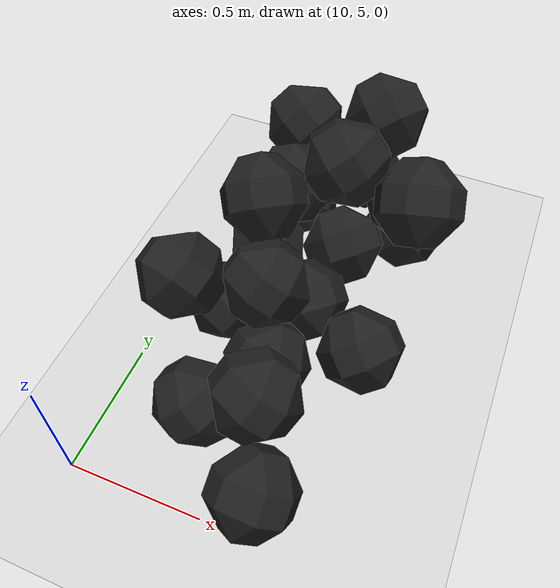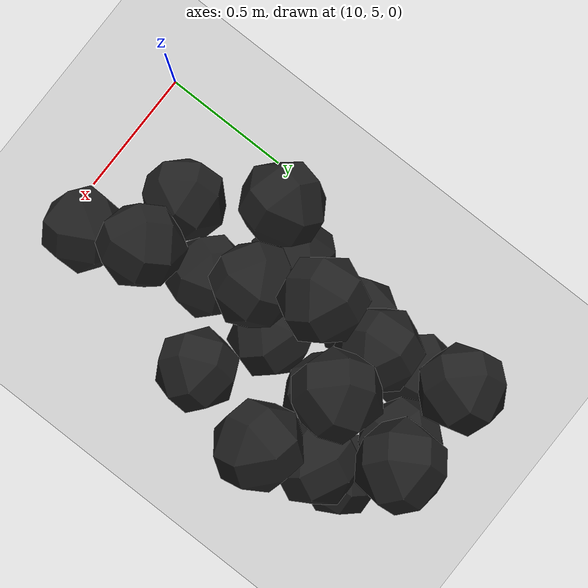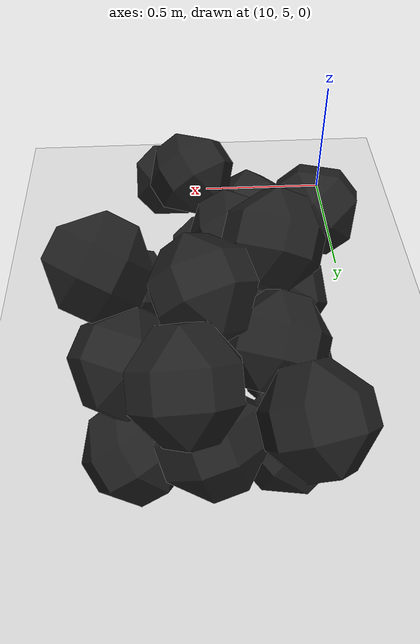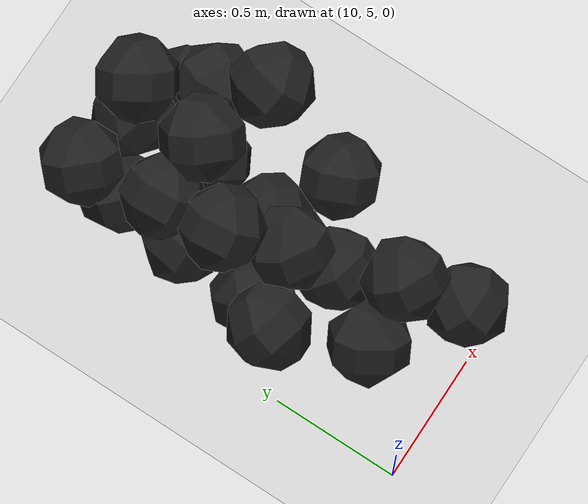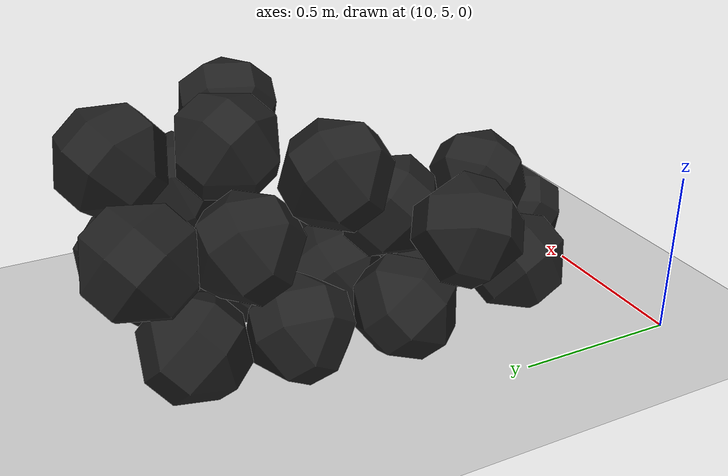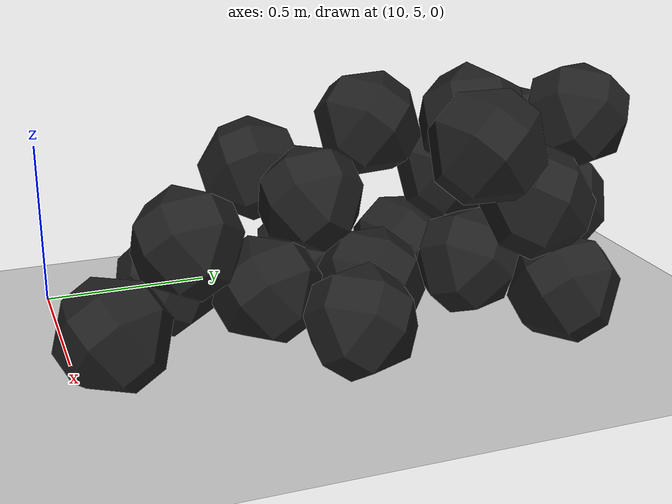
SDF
<sdf version="1.6">
 <world name="default">
  <model name="ground_plane">
   <static>1</static>
   <link name="link">
    <collision name="collision">
     <geometry><plane><normal>0 0 1</normal><size>100 100</size></plane></geometry>
     <surface><friction><ode><mu>100</mu><mu2>50</mu2></ode></friction></surface>
    </collision>
    <visual name="visual">
     <cast_shadows>0</cast_shadows>
     <geometry><plane><normal>0 0 1</normal><size>100 100</size></plane></geometry>
     <material>
      <script><uri>file://media/materials/scripts/gazebo.material</uri><name>Gazebo/Grey</name></script>
     </material>
    </visual>
   </link>
  </model>
  <model name="haoduomiantiaa_6">
   <link name="link_0">
    <inertial>
     <mass>0.2</mass>
     <inertia>
      <ixx>0.166667</ixx>
      <ixy>0</ixy>
      <ixz>0</ixz>
      <iyy>0.166667</iyy>
      <iyz>0</iyz>
      <izz>0.166667</izz>
     </inertia>
    </inertial>
    <visual name="visual">
     <geometry>
      <mesh>
       <uri>/home/oliver/catkin_ws/src/pudong_gazebo/world/stl/haoduomianti.stl</uri>
       <scale>1 1 1</scale>
      </mesh>
     </geometry>
     <material>
      <lighting>1</lighting>
      <script><uri>file://media/materials/scripts/gazebo.material</uri><name>Gazebo/Black</name></script>
      <shader type="pixel"><normal_map>__default__</normal_map></shader>
      <ambient>0.3 0.3 0.3 1</ambient>
      <diffuse>0.7 0.7 0.7 1</diffuse>
      <specular>0.01 0.01 0.01 1</specular>
      <emissive>0 0 0 1</emissive>
     </material>
    </visual>
    <collision name="collision">
     <geometry>
      <mesh>
       <uri>/home/oliver/catkin_ws/src/pudong_gazebo/world/stl/haoduomianti.stl</uri>
       <scale>1 1 1</scale>
      </mesh>
     </geometry>
     <surface>
      <friction>
       <ode><mu>1</mu><mu2>1</mu2><fdir1>0 0 0</fdir1><slip1>0</slip1><slip2>0</slip2></ode>
       <torsional>
        <coefficient>1</coefficient>
        <patch_radius>0</patch_radius>
        <surface_radius>0</surface_radius>
        <use_patch_radius>1</use_patch_radius>
        <ode><slip>0</slip></ode>
       </torsional>
      </friction>
      <bounce><restitution_coefficient>0</restitution_coefficient><threshold>1e+06</threshold></bounce>
      <contact>
       <collide_without_contact>0</collide_without_contact>
       <collide_without_contact_bitmask>1</collide_without_contact_bitmask>
       <collide_bitmask>1</collide_bitmask>
       <ode>
        <soft_cfm>0</soft_cfm>
        <soft_erp>0.2</soft_erp>
        <kp>1e+13</kp>
        <kd>1</kd>
        <max_vel>0.01</max_vel>
        <min_depth>0</min_depth>
       </ode>
       <bullet>
        <split_impulse>1</split_impulse>
        <split_impulse_penetration_threshold>-0.01</split_impulse_penetration_threshold>
        <soft_cfm>0</soft_cfm>
        <soft_erp>0.2</soft_erp>
        <kp>1e+13</kp>
        <kd>1</kd>
       </bullet>
      </contact>
     </surface>
    </collision>
   </link>
   <static>0</static>
   <pose>10.7777 6.39344 -0.11622 0.785471 -0.615068 -0.918398</pose>
  </model>
  <model name="haoduomiantiaa_34">
   <link name="link_0">
    <inertial>
     <mass>0.2</mass>
     <inertia>
      <ixx>0.166667</ixx>
      <ixy>0</ixy>
      <ixz>0</ixz>
      <iyy>0.166667</iyy>
      <iyz>0</iyz>
      <izz>0.166667</izz>
     </inertia>
    </inertial>
    <visual name="visual">
     <geometry>
      <mesh>
       <uri>/home/oliver/catkin_ws/src/pudong_gazebo/world/stl/haoduomianti.stl</uri>
       <scale>1 1 1</scale>
      </mesh>
     </geometry>
     <material>
      <lighting>1</lighting>
      <script><uri>file://media/materials/scripts/gazebo.material</uri><name>Gazebo/Black</name></script>
      <shader type="pixel"><normal_map>__default__</normal_map></shader>
      <ambient>0.3 0.3 0.3 1</ambient>
      <diffuse>0.7 0.7 0.7 1</diffuse>
      <specular>0.01 0.01 0.01 1</specular>
      <emissive>0 0 0 1</emissive>
     </material>
    </visual>
    <collision name="collision">
     <geometry>
      <mesh>
       <uri>/home/oliver/catkin_ws/src/pudong_gazebo/world/stl/haoduomianti.stl</uri>
       <scale>1 1 1</scale>
      </mesh>
     </geometry>
     <surface>
      <friction>
       <ode><mu>1</mu><mu2>1</mu2><fdir1>0 0 0</fdir1><slip1>0</slip1><slip2>0</slip2></ode>
       <torsional>
        <coefficient>1</coefficient>
        <patch_radius>0</patch_radius>
        <surface_radius>0</surface_radius>
        <use_patch_radius>1</use_patch_radius>
        <ode><slip>0</slip></ode>
       </torsional>
      </friction>
      <bounce><restitution_coefficient>0</restitution_coefficient><threshold>1e+06</threshold></bounce>
      <contact>
       <collide_without_contact>0</collide_without_contact>
       <collide_without_contact_bitmask>1</collide_without_contact_bitmask>
       <collide_bitmask>1</collide_bitmask>
       <ode>
        <soft_cfm>0</soft_cfm>
        <soft_erp>0.2</soft_erp>
        <kp>1e+13</kp>
        <kd>1</kd>
        <max_vel>0.01</max_vel>
        <min_depth>0</min_depth>
       </ode>
       <bullet>
        <split_impulse>1</split_impulse>
        <split_impulse_penetration_threshold>-0.01</split_impulse_penetration_threshold>
        <soft_cfm>0</soft_cfm>
        <soft_erp>0.2</soft_erp>
        <kp>1e+13</kp>
        <kd>1</kd>
       </bullet>
      </contact>
     </surface>
    </collision>
   </link>
   <static>0</static>
   <pose>10.2586 6.45566 -0.094433 0.784668 -0.277597 -0.855444</pose>
  </model>
  <model name="haoduomiantiaa_37">
   <link name="link_0">
    <inertial>
     <mass>0.2</mass>
     <inertia>
      <ixx>0.166667</ixx>
      <ixy>0</ixy>
      <ixz>0</ixz>
      <iyy>0.166667</iyy>
      <iyz>0</iyz>
      <izz>0.166667</izz>
     </inertia>
    </inertial>
    <visual name="visual">
     <geometry>
      <mesh>
       <uri>/home/oliver/catkin_ws/src/pudong_gazebo/world/stl/haoduomianti.stl</uri>
       <scale>1 1 1</scale>
      </mesh>
     </geometry>
     <material>
      <lighting>1</lighting>
      <script><uri>file://media/materials/scripts/gazebo.material</uri><name>Gazebo/Black</name></script>
      <shader type="pixel"><normal_map>__default__</normal_map></shader>
      <ambient>0.3 0.3 0.3 1</ambient>
      <diffuse>0.7 0.7 0.7 1</diffuse>
      <specular>0.01 0.01 0.01 1</specular>
      <emissive>0 0 0 1</emissive>
     </material>
    </visual>
    <collision name="collision">
     <geometry>
      <mesh>
       <uri>/home/oliver/catkin_ws/src/pudong_gazebo/world/stl/haoduomianti.stl</uri>
       <scale>1 1 1</scale>
      </mesh>
     </geometry>
     <surface>
      <friction>
       <ode><mu>1</mu><mu2>1</mu2><fdir1>0 0 0</fdir1><slip1>0</slip1><slip2>0</slip2></ode>
       <torsional>
        <coefficient>1</coefficient>
        <patch_radius>0</patch_radius>
        <surface_radius>0</surface_radius>
        <use_patch_radius>1</use_patch_radius>
        <ode><slip>0</slip></ode>
       </torsional>
      </friction>
      <bounce><restitution_coefficient>0</restitution_coefficient><threshold>1e+06</threshold></bounce>
      <contact>
       <collide_without_contact>0</collide_without_contact>
       <collide_without_contact_bitmask>1</collide_without_contact_bitmask>
       <collide_bitmask>1</collide_bitmask>
       <ode>
        <soft_cfm>0</soft_cfm>
        <soft_erp>0.2</soft_erp>
        <kp>1e+13</kp>
        <kd>1</kd>
        <max_vel>0.01</max_vel>
        <min_depth>0</min_depth>
       </ode>
       <bullet>
        <split_impulse>1</split_impulse>
        <split_impulse_penetration_threshold>-0.01</split_impulse_penetration_threshold>
        <soft_cfm>0</soft_cfm>
        <soft_erp>0.2</soft_erp>
        <kp>1e+13</kp>
        <kd>1</kd>
       </bullet>
      </contact>
     </surface>
    </collision>
   </link>
   <static>0</static>
   <pose>10.4399 6.28602 0.224619 -2.3656 -0.652986 -2.24259</pose>
  </model>
  <model name="haoduomiantiaa_63">
   <link name="link_0">
    <inertial>
     <mass>0.2</mass>
     <inertia>
      <ixx>0.166667</ixx>
      <ixy>0</ixy>
      <ixz>0</ixz>
      <iyy>0.166667</iyy>
      <iyz>0</iyz>
      <izz>0.166667</izz>
     </inertia>
    </inertial>
    <visual name="visual">
     <geometry>
      <mesh>
       <uri>/home/oliver/catkin_ws/src/pudong_gazebo/world/stl/haoduomianti.stl</uri>
       <scale>1 1 1</scale>
      </mesh>
     </geometry>
     <material>
      <lighting>1</lighting>
      <script><uri>file://media/materials/scripts/gazebo.material</uri><name>Gazebo/Black</name></script>
      <shader type="pixel"><normal_map>__default__</normal_map></shader>
      <ambient>0.3 0.3 0.3 1</ambient>
      <diffuse>0.7 0.7 0.7 1</diffuse>
      <specular>0.01 0.01 0.01 1</specular>
      <emissive>0 0 0 1</emissive>
     </material>
    </visual>
    <collision name="collision">
     <geometry>
      <mesh>
       <uri>/home/oliver/catkin_ws/src/pudong_gazebo/world/stl/haoduomianti.stl</uri>
       <scale>1 1 1</scale>
      </mesh>
     </geometry>
     <surface>
      <friction>
       <ode><mu>1</mu><mu2>1</mu2><fdir1>0 0 0</fdir1><slip1>0</slip1><slip2>0</slip2></ode>
       <torsional>
        <coefficient>1</coefficient>
        <patch_radius>0</patch_radius>
        <surface_radius>0</surface_radius>
        <use_patch_radius>1</use_patch_radius>
        <ode><slip>0</slip></ode>
       </torsional>
      </friction>
      <bounce><restitution_coefficient>0</restitution_coefficient><threshold>1e+06</threshold></bounce>
      <contact>
       <collide_without_contact>0</collide_without_contact>
       <collide_without_contact_bitmask>1</collide_without_contact_bitmask>
       <collide_bitmask>1</collide_bitmask>
       <ode>
        <soft_cfm>0</soft_cfm>
        <soft_erp>0.2</soft_erp>
        <kp>1e+13</kp>
        <kd>1</kd>
        <max_vel>0.01</max_vel>
        <min_depth>0</min_depth>
       </ode>
       <bullet>
        <split_impulse>1</split_impulse>
        <split_impulse_penetration_threshold>-0.01</split_impulse_penetration_threshold>
        <soft_cfm>0</soft_cfm>
        <soft_erp>0.2</soft_erp>
        <kp>1e+13</kp>
        <kd>1</kd>
       </bullet>
      </contact>
     </surface>
    </collision>
   </link>
   <static>0</static>
   <pose>10.2996 6.23098 0.147769 0.92545 -0.753438 2.07668</pose>
  </model>
  <model name="haoduomiantiaa_64">
   <link name="link_0">
    <inertial>
     <mass>0.2</mass>
     <inertia>
      <ixx>0.166667</ixx>
      <ixy>0</ixy>
      <ixz>0</ixz>
      <iyy>0.166667</iyy>
      <iyz>0</iyz>
      <izz>0.166667</izz>
     </inertia>
    </inertial>
    <visual name="visual">
     <geometry>
      <mesh>
       <uri>/home/oliver/catkin_ws/src/pudong_gazebo/world/stl/haoduomianti.stl</uri>
       <scale>1 1 1</scale>
      </mesh>
     </geometry>
     <material>
      <lighting>1</lighting>
      <script><uri>file://media/materials/scripts/gazebo.material</uri><name>Gazebo/Black</name></script>
      <shader type="pixel"><normal_map>__default__</normal_map></shader>
      <ambient>0.3 0.3 0.3 1</ambient>
      <diffuse>0.7 0.7 0.7 1</diffuse>
      <specular>0.01 0.01 0.01 1</specular>
      <emissive>0 0 0 1</emissive>
     </material>
    </visual>
    <collision name="collision">
     <geometry>
      <mesh>
       <uri>/home/oliver/catkin_ws/src/pudong_gazebo/world/stl/haoduomianti.stl</uri>
       <scale>1 1 1</scale>
      </mesh>
     </geometry>
     <surface>
      <friction>
       <ode><mu>1</mu><mu2>1</mu2><fdir1>0 0 0</fdir1><slip1>0</slip1><slip2>0</slip2></ode>
       <torsional>
        <coefficient>1</coefficient>
        <patch_radius>0</patch_radius>
        <surface_radius>0</surface_radius>
        <use_patch_radius>1</use_patch_radius>
        <ode><slip>0</slip></ode>
       </torsional>
      </friction>
      <bounce><restitution_coefficient>0</restitution_coefficient><threshold>1e+06</threshold></bounce>
      <contact>
       <collide_without_contact>0</collide_without_contact>
       <collide_without_contact_bitmask>1</collide_without_contact_bitmask>
       <collide_bitmask>1</collide_bitmask>
       <ode>
        <soft_cfm>0</soft_cfm>
        <soft_erp>0.2</soft_erp>
        <kp>1e+13</kp>
        <kd>1</kd>
        <max_vel>0.01</max_vel>
        <min_depth>0</min_depth>
       </ode>
       <bullet>
        <split_impulse>1</split_impulse>
        <split_impulse_penetration_threshold>-0.01</split_impulse_penetration_threshold>
        <soft_cfm>0</soft_cfm>
        <soft_erp>0.2</soft_erp>
        <kp>1e+13</kp>
        <kd>1</kd>
       </bullet>
      </contact>
     </surface>
    </collision>
   </link>
   <static>0</static>
   <pose>10.6053 6.12365 0.224257 -2.30398 -0.653258 -1.89944</pose>
  </model>
  <model name="haoduomiantiaa_67">
   <link name="link_0">
    <inertial>
     <mass>0.2</mass>
     <inertia>
      <ixx>0.166667</ixx>
      <ixy>0</ixy>
      <ixz>0</ixz>
      <iyy>0.166667</iyy>
      <iyz>0</iyz>
      <izz>0.166667</izz>
     </inertia>
    </inertial>
    <visual name="visual">
     <geometry>
      <mesh>
       <uri>/home/oliver/catkin_ws/src/pudong_gazebo/world/stl/haoduomianti.stl</uri>
       <scale>1 1 1</scale>
      </mesh>
     </geometry>
     <material>
      <lighting>1</lighting>
      <script><uri>file://media/materials/scripts/gazebo.material</uri><name>Gazebo/Black</name></script>
      <shader type="pixel"><normal_map>__default__</normal_map></shader>
      <ambient>0.3 0.3 0.3 1</ambient>
      <diffuse>0.7 0.7 0.7 1</diffuse>
      <specular>0.01 0.01 0.01 1</specular>
      <emissive>0 0 0 1</emissive>
     </material>
    </visual>
    <collision name="collision">
     <geometry>
      <mesh>
       <uri>/home/oliver/catkin_ws/src/pudong_gazebo/world/stl/haoduomianti.stl</uri>
       <scale>1 1 1</scale>
      </mesh>
     </geometry>
     <surface>
      <friction>
       <ode><mu>1</mu><mu2>1</mu2><fdir1>0 0 0</fdir1><slip1>0</slip1><slip2>0</slip2></ode>
       <torsional>
        <coefficient>1</coefficient>
        <patch_radius>0</patch_radius>
        <surface_radius>0</surface_radius>
        <use_patch_radius>1</use_patch_radius>
        <ode><slip>0</slip></ode>
       </torsional>
      </friction>
      <bounce><restitution_coefficient>0</restitution_coefficient><threshold>1e+06</threshold></bounce>
      <contact>
       <collide_without_contact>0</collide_without_contact>
       <collide_without_contact_bitmask>1</collide_without_contact_bitmask>
       <collide_bitmask>1</collide_bitmask>
       <ode>
        <soft_cfm>0</soft_cfm>
        <soft_erp>0.2</soft_erp>
        <kp>1e+13</kp>
        <kd>1</kd>
        <max_vel>0.01</max_vel>
        <min_depth>0</min_depth>
       </ode>
       <bullet>
        <split_impulse>1</split_impulse>
        <split_impulse_penetration_threshold>-0.01</split_impulse_penetration_threshold>
        <soft_cfm>0</soft_cfm>
        <soft_erp>0.2</soft_erp>
        <kp>1e+13</kp>
        <kd>1</kd>
       </bullet>
      </contact>
     </surface>
    </collision>
   </link>
   <static>0</static>
   <pose>10.1621 5.87307 -0.078001 0.785408 -0.056548 -0.82679</pose>
  </model>
  <model name="haoduomiantiaa_71">
   <link name="link_0">
    <inertial>
     <mass>0.2</mass>
     <inertia>
      <ixx>0.166667</ixx>
      <ixy>0</ixy>
      <ixz>0</ixz>
      <iyy>0.166667</iyy>
      <iyz>0</iyz>
      <izz>0.166667</izz>
     </inertia>
    </inertial>
    <visual name="visual">
     <geometry>
      <mesh>
       <uri>/home/oliver/catkin_ws/src/pudong_gazebo/world/stl/haoduomianti.stl</uri>
       <scale>1 1 1</scale>
      </mesh>
     </geometry>
     <material>
      <lighting>1</lighting>
      <script><uri>file://media/materials/scripts/gazebo.material</uri><name>Gazebo/Black</name></script>
      <shader type="pixel"><normal_map>__default__</normal_map></shader>
      <ambient>0.3 0.3 0.3 1</ambient>
      <diffuse>0.7 0.7 0.7 1</diffuse>
      <specular>0.01 0.01 0.01 1</specular>
      <emissive>0 0 0 1</emissive>
     </material>
    </visual>
    <collision name="collision">
     <geometry>
      <mesh>
       <uri>/home/oliver/catkin_ws/src/pudong_gazebo/world/stl/haoduomianti.stl</uri>
       <scale>1 1 1</scale>
      </mesh>
     </geometry>
     <surface>
      <friction>
       <ode><mu>1</mu><mu2>1</mu2><fdir1>0 0 0</fdir1><slip1>0</slip1><slip2>0</slip2></ode>
       <torsional>
        <coefficient>1</coefficient>
        <patch_radius>0</patch_radius>
        <surface_radius>0</surface_radius>
        <use_patch_radius>1</use_patch_radius>
        <ode><slip>0</slip></ode>
       </torsional>
      </friction>
      <bounce><restitution_coefficient>0</restitution_coefficient><threshold>1e+06</threshold></bounce>
      <contact>
       <collide_without_contact>0</collide_without_contact>
       <collide_without_contact_bitmask>1</collide_without_contact_bitmask>
       <collide_bitmask>1</collide_bitmask>
       <ode>
        <soft_cfm>0</soft_cfm>
        <soft_erp>0.2</soft_erp>
        <kp>1e+13</kp>
        <kd>1</kd>
        <max_vel>0.01</max_vel>
        <min_depth>0</min_depth>
       </ode>
       <bullet>
        <split_impulse>1</split_impulse>
        <split_impulse_penetration_threshold>-0.01</split_impulse_penetration_threshold>
        <soft_cfm>0</soft_cfm>
        <soft_erp>0.2</soft_erp>
        <kp>1e+13</kp>
        <kd>1</kd>
       </bullet>
      </contact>
     </surface>
    </collision>
   </link>
   <static>0</static>
   <pose>10.4831 5.59359 -0.110273 0.908385 -0.667689 1.27099</pose>
  </model>
  <model name="haoduomiantiaa_75">
   <link name="link_0">
    <inertial>
     <mass>0.2</mass>
     <inertia>
      <ixx>0.166667</ixx>
      <ixy>0</ixy>
      <ixz>0</ixz>
      <iyy>0.166667</iyy>
      <iyz>0</iyz>
      <izz>0.166667</izz>
     </inertia>
    </inertial>
    <visual name="visual">
     <geometry>
      <mesh>
       <uri>/home/oliver/catkin_ws/src/pudong_gazebo/world/stl/haoduomianti.stl</uri>
       <scale>1 1 1</scale>
      </mesh>
     </geometry>
     <material>
      <lighting>1</lighting>
      <script><uri>file://media/materials/scripts/gazebo.material</uri><name>Gazebo/Black</name></script>
      <shader type="pixel"><normal_map>__default__</normal_map></shader>
      <ambient>0.3 0.3 0.3 1</ambient>
      <diffuse>0.7 0.7 0.7 1</diffuse>
      <specular>0.01 0.01 0.01 1</specular>
      <emissive>0 0 0 1</emissive>
     </material>
    </visual>
    <collision name="collision">
     <geometry>
      <mesh>
       <uri>/home/oliver/catkin_ws/src/pudong_gazebo/world/stl/haoduomianti.stl</uri>
       <scale>1 1 1</scale>
      </mesh>
     </geometry>
     <surface>
      <friction>
       <ode><mu>1</mu><mu2>1</mu2><fdir1>0 0 0</fdir1><slip1>0</slip1><slip2>0</slip2></ode>
       <torsional>
        <coefficient>1</coefficient>
        <patch_radius>0</patch_radius>
        <surface_radius>0</surface_radius>
        <use_patch_radius>1</use_patch_radius>
        <ode><slip>0</slip></ode>
       </torsional>
      </friction>
      <bounce><restitution_coefficient>0</restitution_coefficient><threshold>1e+06</threshold></bounce>
      <contact>
       <collide_without_contact>0</collide_without_contact>
       <collide_without_contact_bitmask>1</collide_without_contact_bitmask>
       <collide_bitmask>1</collide_bitmask>
       <ode>
        <soft_cfm>0</soft_cfm>
        <soft_erp>0.2</soft_erp>
        <kp>1e+13</kp>
        <kd>1</kd>
        <max_vel>0.01</max_vel>
        <min_depth>0</min_depth>
       </ode>
       <bullet>
        <split_impulse>1</split_impulse>
        <split_impulse_penetration_threshold>-0.01</split_impulse_penetration_threshold>
        <soft_cfm>0</soft_cfm>
        <soft_erp>0.2</soft_erp>
        <kp>1e+13</kp>
        <kd>1</kd>
       </bullet>
      </contact>
     </surface>
    </collision>
   </link>
   <static>0</static>
   <pose>10.7908 5.74537 -0.114168 0.739771 -0.636054 -1.65928</pose>
  </model>
  <model name="haoduomiantiaa_77">
   <link name="link_0">
    <inertial>
     <mass>0.2</mass>
     <inertia>
      <ixx>0.166667</ixx>
      <ixy>0</ixy>
      <ixz>0</ixz>
      <iyy>0.166667</iyy>
      <iyz>0</iyz>
      <izz>0.166667</izz>
     </inertia>
    </inertial>
    <visual name="visual">
     <geometry>
      <mesh>
       <uri>/home/oliver/catkin_ws/src/pudong_gazebo/world/stl/haoduomianti.stl</uri>
       <scale>1 1 1</scale>
      </mesh>
     </geometry>
     <material>
      <lighting>1</lighting>
      <script><uri>file://media/materials/scripts/gazebo.material</uri><name>Gazebo/Black</name></script>
      <shader type="pixel"><normal_map>__default__</normal_map></shader>
      <ambient>0.3 0.3 0.3 1</ambient>
      <diffuse>0.7 0.7 0.7 1</diffuse>
      <specular>0.01 0.01 0.01 1</specular>
      <emissive>0 0 0 1</emissive>
     </material>
    </visual>
    <collision name="collision">
     <geometry>
      <mesh>
       <uri>/home/oliver/catkin_ws/src/pudong_gazebo/world/stl/haoduomianti.stl</uri>
       <scale>1 1 1</scale>
      </mesh>
     </geometry>
     <surface>
      <friction>
       <ode><mu>1</mu><mu2>1</mu2><fdir1>0 0 0</fdir1><slip1>0</slip1><slip2>0</slip2></ode>
       <torsional>
        <coefficient>1</coefficient>
        <patch_radius>0</patch_radius>
        <surface_radius>0</surface_radius>
        <use_patch_radius>1</use_patch_radius>
        <ode><slip>0</slip></ode>
       </torsional>
      </friction>
      <bounce><restitution_coefficient>0</restitution_coefficient><threshold>1e+06</threshold></bounce>
      <contact>
       <collide_without_contact>0</collide_without_contact>
       <collide_without_contact_bitmask>1</collide_without_contact_bitmask>
       <collide_bitmask>1</collide_bitmask>
       <ode>
        <soft_cfm>0</soft_cfm>
        <soft_erp>0.2</soft_erp>
        <kp>1e+13</kp>
        <kd>1</kd>
        <max_vel>0.01</max_vel>
        <min_depth>0</min_depth>
       </ode>
       <bullet>
        <split_impulse>1</split_impulse>
        <split_impulse_penetration_threshold>-0.01</split_impulse_penetration_threshold>
        <soft_cfm>0</soft_cfm>
        <soft_erp>0.2</soft_erp>
        <kp>1e+13</kp>
        <kd>1</kd>
       </bullet>
      </contact>
     </surface>
    </collision>
   </link>
   <static>0</static>
   <pose>10.5324 6.1323 -0.063365 1.09684 -0.667922 2.38381</pose>
  </model>
  <model name="haoduomiantiaa_82">
   <link name="link_0">
    <inertial>
     <mass>0.2</mass>
     <inertia>
      <ixx>0.166667</ixx>
      <ixy>0</ixy>
      <ixz>0</ixz>
      <iyy>0.166667</iyy>
      <iyz>0</iyz>
      <izz>0.166667</izz>
     </inertia>
    </inertial>
    <visual name="visual">
     <geometry>
      <mesh>
       <uri>/home/oliver/catkin_ws/src/pudong_gazebo/world/stl/haoduomianti.stl</uri>
       <scale>1 1 1</scale>
      </mesh>
     </geometry>
     <material>
      <lighting>1</lighting>
      <script><uri>file://media/materials/scripts/gazebo.material</uri><name>Gazebo/Black</name></script>
      <shader type="pixel"><normal_map>__default__</normal_map></shader>
      <ambient>0.3 0.3 0.3 1</ambient>
      <diffuse>0.7 0.7 0.7 1</diffuse>
      <specular>0.01 0.01 0.01 1</specular>
      <emissive>0 0 0 1</emissive>
     </material>
    </visual>
    <collision name="collision">
     <geometry>
      <mesh>
       <uri>/home/oliver/catkin_ws/src/pudong_gazebo/world/stl/haoduomianti.stl</uri>
       <scale>1 1 1</scale>
      </mesh>
     </geometry>
     <surface>
      <friction>
       <ode><mu>1</mu><mu2>1</mu2><fdir1>0 0 0</fdir1><slip1>0</slip1><slip2>0</slip2></ode>
       <torsional>
        <coefficient>1</coefficient>
        <patch_radius>0</patch_radius>
        <surface_radius>0</surface_radius>
        <use_patch_radius>1</use_patch_radius>
        <ode><slip>0</slip></ode>
       </torsional>
      </friction>
      <bounce><restitution_coefficient>0</restitution_coefficient><threshold>1e+06</threshold></bounce>
      <contact>
       <collide_without_contact>0</collide_without_contact>
       <collide_without_contact_bitmask>1</collide_without_contact_bitmask>
       <collide_bitmask>1</collide_bitmask>
       <ode>
        <soft_cfm>0</soft_cfm>
        <soft_erp>0.2</soft_erp>
        <kp>1e+13</kp>
        <kd>1</kd>
        <max_vel>0.01</max_vel>
        <min_depth>0</min_depth>
       </ode>
       <bullet>
        <split_impulse>1</split_impulse>
        <split_impulse_penetration_threshold>-0.01</split_impulse_penetration_threshold>
        <soft_cfm>0</soft_cfm>
        <soft_erp>0.2</soft_erp>
        <kp>1e+13</kp>
        <kd>1</kd>
       </bullet>
      </contact>
     </surface>
    </collision>
   </link>
   <static>0</static>
   <pose>10.4498 5.76093 0.128531 0.798301 -0.744609 1.02449</pose>
  </model>
  <model name="haoduomiantiaa_87">
   <link name="link_0">
    <inertial>
     <mass>0.2</mass>
     <inertia>
      <ixx>0.166667</ixx>
      <ixy>0</ixy>
      <ixz>0</ixz>
      <iyy>0.166667</iyy>
      <iyz>0</iyz>
      <izz>0.166667</izz>
     </inertia>
    </inertial>
    <visual name="visual">
     <geometry>
      <mesh>
       <uri>/home/oliver/catkin_ws/src/pudong_gazebo/world/stl/haoduomianti.stl</uri>
       <scale>1 1 1</scale>
      </mesh>
     </geometry>
     <material>
      <lighting>1</lighting>
      <script><uri>file://media/materials/scripts/gazebo.material</uri><name>Gazebo/Black</name></script>
      <shader type="pixel"><normal_map>__default__</normal_map></shader>
      <ambient>0.3 0.3 0.3 1</ambient>
      <diffuse>0.7 0.7 0.7 1</diffuse>
      <specular>0.01 0.01 0.01 1</specular>
      <emissive>0 0 0 1</emissive>
     </material>
    </visual>
    <collision name="collision">
     <geometry>
      <mesh>
       <uri>/home/oliver/catkin_ws/src/pudong_gazebo/world/stl/haoduomianti.stl</uri>
       <scale>1 1 1</scale>
      </mesh>
     </geometry>
     <surface>
      <friction>
       <ode><mu>1</mu><mu2>1</mu2><fdir1>0 0 0</fdir1><slip1>0</slip1><slip2>0</slip2></ode>
       <torsional>
        <coefficient>1</coefficient>
        <patch_radius>0</patch_radius>
        <surface_radius>0</surface_radius>
        <use_patch_radius>1</use_patch_radius>
        <ode><slip>0</slip></ode>
       </torsional>
      </friction>
      <bounce><restitution_coefficient>0</restitution_coefficient><threshold>1e+06</threshold></bounce>
      <contact>
       <collide_without_contact>0</collide_without_contact>
       <collide_without_contact_bitmask>1</collide_without_contact_bitmask>
       <collide_bitmask>1</collide_bitmask>
       <ode>
        <soft_cfm>0</soft_cfm>
        <soft_erp>0.2</soft_erp>
        <kp>1e+13</kp>
        <kd>1</kd>
        <max_vel>0.01</max_vel>
        <min_depth>0</min_depth>
       </ode>
       <bullet>
        <split_impulse>1</split_impulse>
        <split_impulse_penetration_threshold>-0.01</split_impulse_penetration_threshold>
        <soft_cfm>0</soft_cfm>
        <soft_erp>0.2</soft_erp>
        <kp>1e+13</kp>
        <kd>1</kd>
       </bullet>
      </contact>
     </surface>
    </collision>
   </link>
   <static>0</static>
   <pose>10.6458 6.50741 0.085409 0.769814 -0.223904 -2.92092</pose>
  </model>
  <model name="haoduomiantiaa_106">
   <link name="link_0">
    <inertial>
     <mass>0.2</mass>
     <inertia>
      <ixx>0.166667</ixx>
      <ixy>0</ixy>
      <ixz>0</ixz>
      <iyy>0.166667</iyy>
      <iyz>0</iyz>
      <izz>0.166667</izz>
     </inertia>
    </inertial>
    <visual name="visual">
     <geometry>
      <mesh>
       <uri>/home/oliver/catkin_ws/src/pudong_gazebo/world/stl/haoduomianti.stl</uri>
       <scale>1 1 1</scale>
      </mesh>
     </geometry>
     <material>
      <lighting>1</lighting>
      <script><uri>file://media/materials/scripts/gazebo.material</uri><name>Gazebo/Black</name></script>
      <shader type="pixel"><normal_map>__default__</normal_map></shader>
      <ambient>0.3 0.3 0.3 1</ambient>
      <diffuse>0.7 0.7 0.7 1</diffuse>
      <specular>0.01 0.01 0.01 1</specular>
      <emissive>0 0 0 1</emissive>
     </material>
    </visual>
    <collision name="collision">
     <geometry>
      <mesh>
       <uri>/home/oliver/catkin_ws/src/pudong_gazebo/world/stl/haoduomianti.stl</uri>
       <scale>1 1 1</scale>
      </mesh>
     </geometry>
     <surface>
      <friction>
       <ode><mu>1</mu><mu2>1</mu2><fdir1>0 0 0</fdir1><slip1>0</slip1><slip2>0</slip2></ode>
       <torsional>
        <coefficient>1</coefficient>
        <patch_radius>0</patch_radius>
        <surface_radius>0</surface_radius>
        <use_patch_radius>1</use_patch_radius>
        <ode><slip>0</slip></ode>
       </torsional>
      </friction>
      <bounce><restitution_coefficient>0</restitution_coefficient><threshold>1e+06</threshold></bounce>
      <contact>
       <collide_without_contact>0</collide_without_contact>
       <collide_without_contact_bitmask>1</collide_without_contact_bitmask>
       <collide_bitmask>1</collide_bitmask>
       <ode>
        <soft_cfm>0</soft_cfm>
        <soft_erp>0.2</soft_erp>
        <kp>1e+13</kp>
        <kd>1</kd>
        <max_vel>0.01</max_vel>
        <min_depth>0</min_depth>
       </ode>
       <bullet>
        <split_impulse>1</split_impulse>
        <split_impulse_penetration_threshold>-0.01</split_impulse_penetration_threshold>
        <soft_cfm>0</soft_cfm>
        <soft_erp>0.2</soft_erp>
        <kp>1e+13</kp>
        <kd>1</kd>
       </bullet>
      </contact>
     </surface>
    </collision>
   </link>
   <static>0</static>
   <pose>10.2809 6.52278 0.202494 0.783765 -0.643633 0.759802</pose>
  </model>
  <model name="haoduomiantiaa_113">
   <link name="link_0">
    <inertial>
     <mass>0.2</mass>
     <inertia>
      <ixx>0.166667</ixx>
      <ixy>0</ixy>
      <ixz>0</ixz>
      <iyy>0.166667</iyy>
      <iyz>0</iyz>
      <izz>0.166667</izz>
     </inertia>
    </inertial>
    <visual name="visual">
     <geometry>
      <mesh>
       <uri>/home/oliver/catkin_ws/src/pudong_gazebo/world/stl/haoduomianti.stl</uri>
       <scale>1 1 1</scale>
      </mesh>
     </geometry>
     <material>
      <lighting>1</lighting>
      <script><uri>file://media/materials/scripts/gazebo.material</uri><name>Gazebo/Black</name></script>
      <shader type="pixel"><normal_map>__default__</normal_map></shader>
      <ambient>0.3 0.3 0.3 1</ambient>
      <diffuse>0.7 0.7 0.7 1</diffuse>
      <specular>0.01 0.01 0.01 1</specular>
      <emissive>0 0 0 1</emissive>
     </material>
    </visual>
    <collision name="collision">
     <geometry>
      <mesh>
       <uri>/home/oliver/catkin_ws/src/pudong_gazebo/world/stl/haoduomianti.stl</uri>
       <scale>1 1 1</scale>
      </mesh>
     </geometry>
     <surface>
      <friction>
       <ode><mu>1</mu><mu2>1</mu2><fdir1>0 0 0</fdir1><slip1>0</slip1><slip2>0</slip2></ode>
       <torsional>
        <coefficient>1</coefficient>
        <patch_radius>0</patch_radius>
        <surface_radius>0</surface_radius>
        <use_patch_radius>1</use_patch_radius>
        <ode><slip>0</slip></ode>
       </torsional>
      </friction>
      <bounce><restitution_coefficient>0</restitution_coefficient><threshold>1e+06</threshold></bounce>
      <contact>
       <collide_without_contact>0</collide_without_contact>
       <collide_without_contact_bitmask>1</collide_without_contact_bitmask>
       <collide_bitmask>1</collide_bitmask>
       <ode>
        <soft_cfm>0</soft_cfm>
        <soft_erp>0.2</soft_erp>
        <kp>1e+13</kp>
        <kd>1</kd>
        <max_vel>0.01</max_vel>
        <min_depth>0</min_depth>
       </ode>
       <bullet>
        <split_impulse>1</split_impulse>
        <split_impulse_penetration_threshold>-0.01</split_impulse_penetration_threshold>
        <soft_cfm>0</soft_cfm>
        <soft_erp>0.2</soft_erp>
        <kp>1e+13</kp>
        <kd>1</kd>
       </bullet>
      </contact>
     </surface>
    </collision>
   </link>
   <static>0</static>
   <pose>10.8027 6.32938 0.168637 1.02125 -0.688569 -0.063192</pose>
  </model>
  <model name="haoduomiantiaa_134">
   <link name="link_0">
    <inertial>
     <mass>0.2</mass>
     <inertia>
      <ixx>0.166667</ixx>
      <ixy>0</ixy>
      <ixz>0</ixz>
      <iyy>0.166667</iyy>
      <iyz>0</iyz>
      <izz>0.166667</izz>
     </inertia>
    </inertial>
    <visual name="visual">
     <geometry>
      <mesh>
       <uri>/home/oliver/catkin_ws/src/pudong_gazebo/world/stl/haoduomianti.stl</uri>
       <scale>1 1 1</scale>
      </mesh>
     </geometry>
     <material>
      <lighting>1</lighting>
      <script><uri>file://media/materials/scripts/gazebo.material</uri><name>Gazebo/Black</name></script>
      <shader type="pixel"><normal_map>__default__</normal_map></shader>
      <ambient>0.3 0.3 0.3 1</ambient>
      <diffuse>0.7 0.7 0.7 1</diffuse>
      <specular>0.01 0.01 0.01 1</specular>
      <emissive>0 0 0 1</emissive>
     </material>
    </visual>
    <collision name="collision">
     <geometry>
      <mesh>
       <uri>/home/oliver/catkin_ws/src/pudong_gazebo/world/stl/haoduomianti.stl</uri>
       <scale>1 1 1</scale>
      </mesh>
     </geometry>
     <surface>
      <friction>
       <ode><mu>1</mu><mu2>1</mu2><fdir1>0 0 0</fdir1><slip1>0</slip1><slip2>0</slip2></ode>
       <torsional>
        <coefficient>1</coefficient>
        <patch_radius>0</patch_radius>
        <surface_radius>0</surface_radius>
        <use_patch_radius>1</use_patch_radius>
        <ode><slip>0</slip></ode>
       </torsional>
      </friction>
      <bounce><restitution_coefficient>0</restitution_coefficient><threshold>1e+06</threshold></bounce>
      <contact>
       <collide_without_contact>0</collide_without_contact>
       <collide_without_contact_bitmask>1</collide_without_contact_bitmask>
       <collide_bitmask>1</collide_bitmask>
       <ode>
        <soft_cfm>0</soft_cfm>
        <soft_erp>0.2</soft_erp>
        <kp>1e+13</kp>
        <kd>1</kd>
        <max_vel>0.01</max_vel>
        <min_depth>0</min_depth>
       </ode>
       <bullet>
        <split_impulse>1</split_impulse>
        <split_impulse_penetration_threshold>-0.01</split_impulse_penetration_threshold>
        <soft_cfm>0</soft_cfm>
        <soft_erp>0.2</soft_erp>
        <kp>1e+13</kp>
        <kd>1</kd>
       </bullet>
      </contact>
     </surface>
    </collision>
   </link>
   <static>0</static>
   <pose>10.5588 5.35093 0.087004 0.881678 -0.668959 1.07698</pose>
  </model>
  <model name="haoduomiantiaa_149">
   <link name="link_0">
    <inertial>
     <mass>0.2</mass>
     <inertia>
      <ixx>0.166667</ixx>
      <ixy>0</ixy>
      <ixz>0</ixz>
      <iyy>0.166667</iyy>
      <iyz>0</iyz>
      <izz>0.166667</izz>
     </inertia>
    </inertial>
    <visual name="visual">
     <geometry>
      <mesh>
       <uri>/home/oliver/catkin_ws/src/pudong_gazebo/world/stl/haoduomianti.stl</uri>
       <scale>1 1 1</scale>
      </mesh>
     </geometry>
     <material>
      <lighting>1</lighting>
      <script><uri>file://media/materials/scripts/gazebo.material</uri><name>Gazebo/Black</name></script>
      <shader type="pixel"><normal_map>__default__</normal_map></shader>
      <ambient>0.3 0.3 0.3 1</ambient>
      <diffuse>0.7 0.7 0.7 1</diffuse>
      <specular>0.01 0.01 0.01 1</specular>
      <emissive>0 0 0 1</emissive>
     </material>
    </visual>
    <collision name="collision">
     <geometry>
      <mesh>
       <uri>/home/oliver/catkin_ws/src/pudong_gazebo/world/stl/haoduomianti.stl</uri>
       <scale>1 1 1</scale>
      </mesh>
     </geometry>
     <surface>
      <friction>
       <ode><mu>1</mu><mu2>1</mu2><fdir1>0 0 0</fdir1><slip1>0</slip1><slip2>0</slip2></ode>
       <torsional>
        <coefficient>1</coefficient>
        <patch_radius>0</patch_radius>
        <surface_radius>0</surface_radius>
        <use_patch_radius>1</use_patch_radius>
        <ode><slip>0</slip></ode>
       </torsional>
      </friction>
      <bounce><restitution_coefficient>0</restitution_coefficient><threshold>1e+06</threshold></bounce>
      <contact>
       <collide_without_contact>0</collide_without_contact>
       <collide_without_contact_bitmask>1</collide_without_contact_bitmask>
       <collide_bitmask>1</collide_bitmask>
       <ode>
        <soft_cfm>0</soft_cfm>
        <soft_erp>0.2</soft_erp>
        <kp>1e+13</kp>
        <kd>1</kd>
        <max_vel>0.01</max_vel>
        <min_depth>0</min_depth>
       </ode>
       <bullet>
        <split_impulse>1</split_impulse>
        <split_impulse_penetration_threshold>-0.01</split_impulse_penetration_threshold>
        <soft_cfm>0</soft_cfm>
        <soft_erp>0.2</soft_erp>
        <kp>1e+13</kp>
        <kd>1</kd>
       </bullet>
      </contact>
     </surface>
    </collision>
   </link>
   <static>0</static>
   <pose>10.8248 6.09852 0.359754 0.83534 -0.495816 -0.214051</pose>
  </model>
  <model name="haoduomiantiaa_154">
   <link name="link_0">
    <inertial>
     <mass>0.2</mass>
     <inertia>
      <ixx>0.166667</ixx>
      <ixy>0</ixy>
      <ixz>0</ixz>
      <iyy>0.166667</iyy>
      <iyz>0</iyz>
      <izz>0.166667</izz>
     </inertia>
    </inertial>
    <visual name="visual">
     <geometry>
      <mesh>
       <uri>/home/oliver/catkin_ws/src/pudong_gazebo/world/stl/haoduomianti.stl</uri>
       <scale>1 1 1</scale>
      </mesh>
     </geometry>
     <material>
      <lighting>1</lighting>
      <script><uri>file://media/materials/scripts/gazebo.material</uri><name>Gazebo/Black</name></script>
      <shader type="pixel"><normal_map>__default__</normal_map></shader>
      <ambient>0.3 0.3 0.3 1</ambient>
      <diffuse>0.7 0.7 0.7 1</diffuse>
      <specular>0.01 0.01 0.01 1</specular>
      <emissive>0 0 0 1</emissive>
     </material>
    </visual>
    <collision name="collision">
     <geometry>
      <mesh>
       <uri>/home/oliver/catkin_ws/src/pudong_gazebo/world/stl/haoduomianti.stl</uri>
       <scale>1 1 1</scale>
      </mesh>
     </geometry>
     <surface>
      <friction>
       <ode><mu>1</mu><mu2>1</mu2><fdir1>0 0 0</fdir1><slip1>0</slip1><slip2>0</slip2></ode>
       <torsional>
        <coefficient>1</coefficient>
        <patch_radius>0</patch_radius>
        <surface_radius>0</surface_radius>
        <use_patch_radius>1</use_patch_radius>
        <ode><slip>0</slip></ode>
       </torsional>
      </friction>
      <bounce><restitution_coefficient>0</restitution_coefficient><threshold>1e+06</threshold></bounce>
      <contact>
       <collide_without_contact>0</collide_without_contact>
       <collide_without_contact_bitmask>1</collide_without_contact_bitmask>
       <collide_bitmask>1</collide_bitmask>
       <ode>
        <soft_cfm>0</soft_cfm>
        <soft_erp>0.2</soft_erp>
        <kp>1e+13</kp>
        <kd>1</kd>
        <max_vel>0.01</max_vel>
        <min_depth>0</min_depth>
       </ode>
       <bullet>
        <split_impulse>1</split_impulse>
        <split_impulse_penetration_threshold>-0.01</split_impulse_penetration_threshold>
        <soft_cfm>0</soft_cfm>
        <soft_erp>0.2</soft_erp>
        <kp>1e+13</kp>
        <kd>1</kd>
       </bullet>
      </contact>
     </surface>
    </collision>
   </link>
   <static>0</static>
   <pose>10.5947 6.46376 0.352359 0.702794 -0.492504 0.567973</pose>
  </model>
  <model name="haoduomiantiaa_161">
   <link name="link_0">
    <inertial>
     <mass>0.2</mass>
     <inertia>
      <ixx>0.166667</ixx>
      <ixy>0</ixy>
      <ixz>0</ixz>
      <iyy>0.166667</iyy>
      <iyz>0</iyz>
      <izz>0.166667</izz>
     </inertia>
    </inertial>
    <visual name="visual">
     <geometry>
      <mesh>
       <uri>/home/oliver/catkin_ws/src/pudong_gazebo/world/stl/haoduomianti.stl</uri>
       <scale>1 1 1</scale>
      </mesh>
     </geometry>
     <material>
      <lighting>1</lighting>
      <script><uri>file://media/materials/scripts/gazebo.material</uri><name>Gazebo/Black</name></script>
      <shader type="pixel"><normal_map>__default__</normal_map></shader>
      <ambient>0.3 0.3 0.3 1</ambient>
      <diffuse>0.7 0.7 0.7 1</diffuse>
      <specular>0.01 0.01 0.01 1</specular>
      <emissive>0 0 0 1</emissive>
     </material>
    </visual>
    <collision name="collision">
     <geometry>
      <mesh>
       <uri>/home/oliver/catkin_ws/src/pudong_gazebo/world/stl/haoduomianti.stl</uri>
       <scale>1 1 1</scale>
      </mesh>
     </geometry>
     <surface>
      <friction>
       <ode><mu>1</mu><mu2>1</mu2><fdir1>0 0 0</fdir1><slip1>0</slip1><slip2>0</slip2></ode>
       <torsional>
        <coefficient>1</coefficient>
        <patch_radius>0</patch_radius>
        <surface_radius>0</surface_radius>
        <use_patch_radius>1</use_patch_radius>
        <ode><slip>0</slip></ode>
       </torsional>
      </friction>
      <bounce><restitution_coefficient>0</restitution_coefficient><threshold>1e+06</threshold></bounce>
      <contact>
       <collide_without_contact>0</collide_without_contact>
       <collide_without_contact_bitmask>1</collide_without_contact_bitmask>
       <collide_bitmask>1</collide_bitmask>
       <ode>
        <soft_cfm>0</soft_cfm>
        <soft_erp>0.2</soft_erp>
        <kp>1e+13</kp>
        <kd>1</kd>
        <max_vel>0.01</max_vel>
        <min_depth>0</min_depth>
       </ode>
       <bullet>
        <split_impulse>1</split_impulse>
        <split_impulse_penetration_threshold>-0.01</split_impulse_penetration_threshold>
        <soft_cfm>0</soft_cfm>
        <soft_erp>0.2</soft_erp>
        <kp>1e+13</kp>
        <kd>1</kd>
       </bullet>
      </contact>
     </surface>
    </collision>
   </link>
   <static>0</static>
   <pose>10.3352 5.368 -0.109009 0.598295 -0.690219 2.81882</pose>
  </model>
  <model name="haoduomiantiaa_166">
   <link name="link_0">
    <inertial>
     <mass>0.2</mass>
     <inertia>
      <ixx>0.166667</ixx>
      <ixy>0</ixy>
      <ixz>0</ixz>
      <iyy>0.166667</iyy>
      <iyz>0</iyz>
      <izz>0.166667</izz>
     </inertia>
    </inertial>
    <visual name="visual">
     <geometry>
      <mesh>
       <uri>/home/oliver/catkin_ws/src/pudong_gazebo/world/stl/haoduomianti.stl</uri>
       <scale>1 1 1</scale>
      </mesh>
     </geometry>
     <material>
      <lighting>1</lighting>
      <script><uri>file://media/materials/scripts/gazebo.material</uri><name>Gazebo/Black</name></script>
      <shader type="pixel"><normal_map>__default__</normal_map></shader>
      <ambient>0.3 0.3 0.3 1</ambient>
      <diffuse>0.7 0.7 0.7 1</diffuse>
      <specular>0.01 0.01 0.01 1</specular>
      <emissive>0 0 0 1</emissive>
     </material>
    </visual>
    <collision name="collision">
     <geometry>
      <mesh>
       <uri>/home/oliver/catkin_ws/src/pudong_gazebo/world/stl/haoduomianti.stl</uri>
       <scale>1 1 1</scale>
      </mesh>
     </geometry>
     <surface>
      <friction>
       <ode><mu>1</mu><mu2>1</mu2><fdir1>0 0 0</fdir1><slip1>0</slip1><slip2>0</slip2></ode>
       <torsional>
        <coefficient>1</coefficient>
        <patch_radius>0</patch_radius>
        <surface_radius>0</surface_radius>
        <use_patch_radius>1</use_patch_radius>
        <ode><slip>0</slip></ode>
       </torsional>
      </friction>
      <bounce><restitution_coefficient>0</restitution_coefficient><threshold>1e+06</threshold></bounce>
      <contact>
       <collide_without_contact>0</collide_without_contact>
       <collide_without_contact_bitmask>1</collide_without_contact_bitmask>
       <collide_bitmask>1</collide_bitmask>
       <ode>
        <soft_cfm>0</soft_cfm>
        <soft_erp>0.2</soft_erp>
        <kp>1e+13</kp>
        <kd>1</kd>
        <max_vel>0.01</max_vel>
        <min_depth>0</min_depth>
       </ode>
       <bullet>
        <split_impulse>1</split_impulse>
        <split_impulse_penetration_threshold>-0.01</split_impulse_penetration_threshold>
        <soft_cfm>0</soft_cfm>
        <soft_erp>0.2</soft_erp>
        <kp>1e+13</kp>
        <kd>1</kd>
       </bullet>
      </contact>
     </surface>
    </collision>
   </link>
   <static>0</static>
   <pose>10.6548 5.10266 -0.115453 0.785298 -0.614985 -2.64707</pose>
  </model>
  <model name="haoduomiantiaa_177">
   <link name="link_0">
    <inertial>
     <mass>0.2</mass>
     <inertia>
      <ixx>0.166667</ixx>
      <ixy>0</ixy>
      <ixz>0</ixz>
      <iyy>0.166667</iyy>
      <iyz>0</iyz>
      <izz>0.166667</izz>
     </inertia>
    </inertial>
    <visual name="visual">
     <geometry>
      <mesh>
       <uri>/home/oliver/catkin_ws/src/pudong_gazebo/world/stl/haoduomianti.stl</uri>
       <scale>1 1 1</scale>
      </mesh>
     </geometry>
     <material>
      <lighting>1</lighting>
      <script><uri>file://media/materials/scripts/gazebo.material</uri><name>Gazebo/Black</name></script>
      <shader type="pixel"><normal_map>__default__</normal_map></shader>
      <ambient>0.3 0.3 0.3 1</ambient>
      <diffuse>0.7 0.7 0.7 1</diffuse>
      <specular>0.01 0.01 0.01 1</specular>
      <emissive>0 0 0 1</emissive>
     </material>
    </visual>
    <collision name="collision">
     <geometry>
      <mesh>
       <uri>/home/oliver/catkin_ws/src/pudong_gazebo/world/stl/haoduomianti.stl</uri>
       <scale>1 1 1</scale>
      </mesh>
     </geometry>
     <surface>
      <friction>
       <ode><mu>1</mu><mu2>1</mu2><fdir1>0 0 0</fdir1><slip1>0</slip1><slip2>0</slip2></ode>
       <torsional>
        <coefficient>1</coefficient>
        <patch_radius>0</patch_radius>
        <surface_radius>0</surface_radius>
        <use_patch_radius>1</use_patch_radius>
        <ode><slip>0</slip></ode>
       </torsional>
      </friction>
      <bounce><restitution_coefficient>0</restitution_coefficient><threshold>1e+06</threshold></bounce>
      <contact>
       <collide_without_contact>0</collide_without_contact>
       <collide_without_contact_bitmask>1</collide_without_contact_bitmask>
       <collide_bitmask>1</collide_bitmask>
       <ode>
        <soft_cfm>0</soft_cfm>
        <soft_erp>0.2</soft_erp>
        <kp>1e+13</kp>
        <kd>1</kd>
        <max_vel>0.01</max_vel>
        <min_depth>0</min_depth>
       </ode>
       <bullet>
        <split_impulse>1</split_impulse>
        <split_impulse_penetration_threshold>-0.01</split_impulse_penetration_threshold>
        <soft_cfm>0</soft_cfm>
        <soft_erp>0.2</soft_erp>
        <kp>1e+13</kp>
        <kd>1</kd>
       </bullet>
      </contact>
     </surface>
    </collision>
   </link>
   <static>0</static>
   <pose>10.3071 5.95279 0.310453 0.806889 -0.51466 0.102997</pose>
  </model>
  <model name="haoduomiantiaa_183">
   <link name="link_0">
    <inertial>
     <mass>0.2</mass>
     <inertia>
      <ixx>0.166667</ixx>
      <ixy>0</ixy>
      <ixz>0</ixz>
      <iyy>0.166667</iyy>
      <iyz>0</iyz>
      <izz>0.166667</izz>
     </inertia>
    </inertial>
    <visual name="visual">
     <geometry>
      <mesh>
       <uri>/home/oliver/catkin_ws/src/pudong_gazebo/world/stl/haoduomianti.stl</uri>
       <scale>1 1 1</scale>
      </mesh>
     </geometry>
     <material>
      <lighting>1</lighting>
      <script><uri>file://media/materials/scripts/gazebo.material</uri><name>Gazebo/Black</name></script>
      <shader type="pixel"><normal_map>__default__</normal_map></shader>
      <ambient>0.3 0.3 0.3 1</ambient>
      <diffuse>0.7 0.7 0.7 1</diffuse>
      <specular>0.01 0.01 0.01 1</specular>
      <emissive>0 0 0 1</emissive>
     </material>
    </visual>
    <collision name="collision">
     <geometry>
      <mesh>
       <uri>/home/oliver/catkin_ws/src/pudong_gazebo/world/stl/haoduomianti.stl</uri>
       <scale>1 1 1</scale>
      </mesh>
     </geometry>
     <surface>
      <friction>
       <ode><mu>1</mu><mu2>1</mu2><fdir1>0 0 0</fdir1><slip1>0</slip1><slip2>0</slip2></ode>
       <torsional>
        <coefficient>1</coefficient>
        <patch_radius>0</patch_radius>
        <surface_radius>0</surface_radius>
        <use_patch_radius>1</use_patch_radius>
        <ode><slip>0</slip></ode>
       </torsional>
      </friction>
      <bounce><restitution_coefficient>0</restitution_coefficient><threshold>1e+06</threshold></bounce>
      <contact>
       <collide_without_contact>0</collide_without_contact>
       <collide_without_contact_bitmask>1</collide_without_contact_bitmask>
       <collide_bitmask>1</collide_bitmask>
       <ode>
        <soft_cfm>0</soft_cfm>
        <soft_erp>0.2</soft_erp>
        <kp>1e+13</kp>
        <kd>1</kd>
        <max_vel>0.01</max_vel>
        <min_depth>0</min_depth>
       </ode>
       <bullet>
        <split_impulse>1</split_impulse>
        <split_impulse_penetration_threshold>-0.01</split_impulse_penetration_threshold>
        <soft_cfm>0</soft_cfm>
        <soft_erp>0.2</soft_erp>
        <kp>1e+13</kp>
        <kd>1</kd>
       </bullet>
      </contact>
     </surface>
    </collision>
   </link>
   <static>0</static>
   <pose>10.1413 5.56977 0.158796 0.756076 -0.364223 1.3285</pose>
  </model>
  <model name="haoduomiantiaa_190">
   <link name="link_0">
    <inertial>
     <mass>0.2</mass>
     <inertia>
      <ixx>0.166667</ixx>
      <ixy>0</ixy>
      <ixz>0</ixz>
      <iyy>0.166667</iyy>
      <iyz>0</iyz>
      <izz>0.166667</izz>
     </inertia>
    </inertial>
    <visual name="visual">
     <geometry>
      <mesh>
       <uri>/home/oliver/catkin_ws/src/pudong_gazebo/world/stl/haoduomianti.stl</uri>
       <scale>1 1 1</scale>
      </mesh>
     </geometry>
     <material>
      <lighting>1</lighting>
      <script><uri>file://media/materials/scripts/gazebo.material</uri><name>Gazebo/Black</name></script>
      <shader type="pixel"><normal_map>__default__</normal_map></shader>
      <ambient>0.3 0.3 0.3 1</ambient>
      <diffuse>0.7 0.7 0.7 1</diffuse>
      <specular>0.01 0.01 0.01 1</specular>
      <emissive>0 0 0 1</emissive>
     </material>
    </visual>
    <collision name="collision">
     <geometry>
      <mesh>
       <uri>/home/oliver/catkin_ws/src/pudong_gazebo/world/stl/haoduomianti.stl</uri>
       <scale>1 1 1</scale>
      </mesh>
     </geometry>
     <surface>
      <friction>
       <ode><mu>1</mu><mu2>1</mu2><fdir1>0 0 0</fdir1><slip1>0</slip1><slip2>0</slip2></ode>
       <torsional>
        <coefficient>1</coefficient>
        <patch_radius>0</patch_radius>
        <surface_radius>0</surface_radius>
        <use_patch_radius>1</use_patch_radius>
        <ode><slip>0</slip></ode>
       </torsional>
      </friction>
      <bounce><restitution_coefficient>0</restitution_coefficient><threshold>1e+06</threshold></bounce>
      <contact>
       <collide_without_contact>0</collide_without_contact>
       <collide_without_contact_bitmask>1</collide_without_contact_bitmask>
       <collide_bitmask>1</collide_bitmask>
       <ode>
        <soft_cfm>0</soft_cfm>
        <soft_erp>0.2</soft_erp>
        <kp>1e+13</kp>
        <kd>1</kd>
        <max_vel>0.01</max_vel>
        <min_depth>0</min_depth>
       </ode>
       <bullet>
        <split_impulse>1</split_impulse>
        <split_impulse_penetration_threshold>-0.01</split_impulse_penetration_threshold>
        <soft_cfm>0</soft_cfm>
        <soft_erp>0.2</soft_erp>
        <kp>1e+13</kp>
        <kd>1</kd>
       </bullet>
      </contact>
     </surface>
    </collision>
   </link>
   <static>0</static>
   <pose>10.511 6.21534 0.360769 1.04019 -0.556308 0.652447</pose>
  </model>
 </world>
</sdf>
